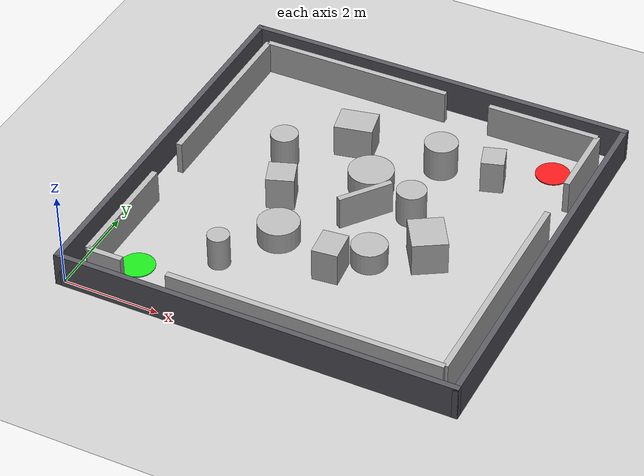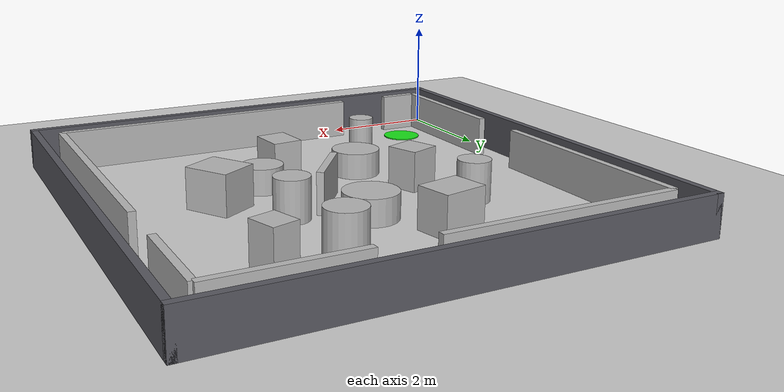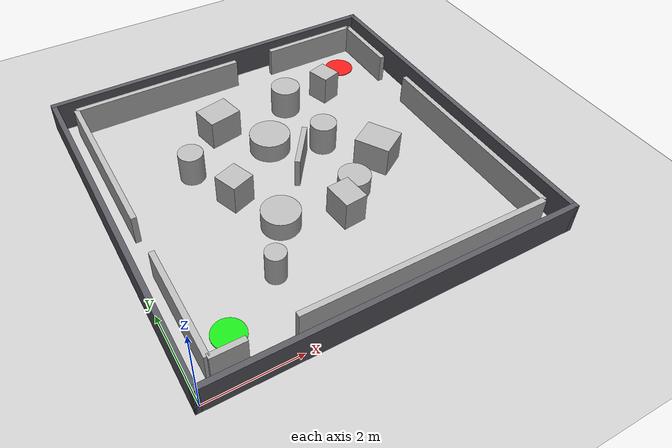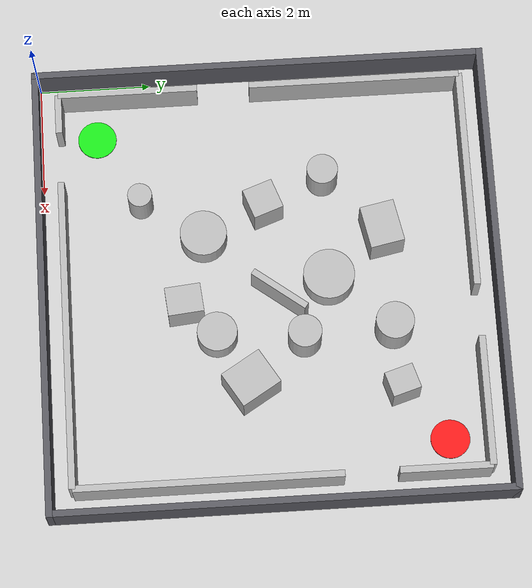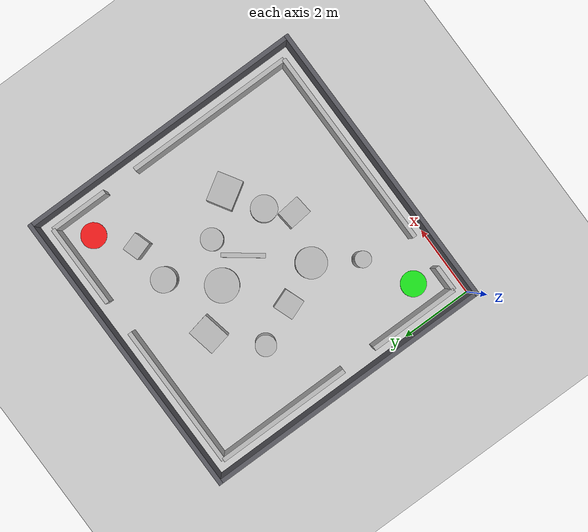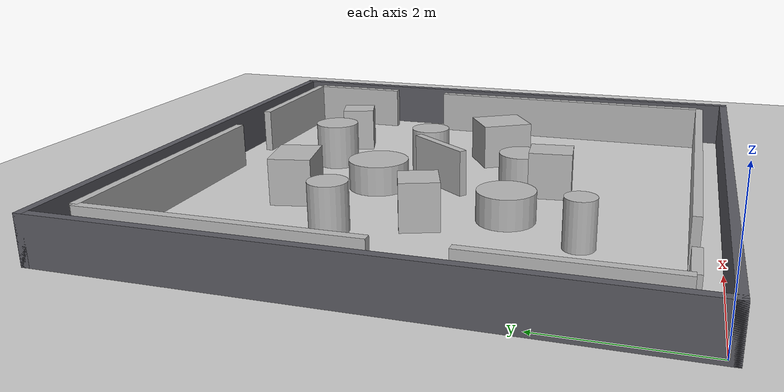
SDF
<?xml version="1.0" ?>
<sdf version="1.6">
  <world name="level1_arena_8x8_irregular_tight">
    <gravity>0 0 -9.8</gravity>
    <physics type="ode">
      <max_step_size>0.001</max_step_size>
      <real_time_factor>1.0</real_time_factor>
      <real_time_update_rate>1000</real_time_update_rate>
    </physics>

    <plugin name="gazebo_ros_state" filename="libgazebo_ros_state.so">
      <update_rate>50.0</update_rate>
    </plugin>

    <include><uri>model://sun</uri></include>
    <include><uri>model://ground_plane</uri></include>

    <!-- ===== Outer walls (inner boundary roughly [0,8]×[0,8]) ===== -->
    <model name="a8_wall_south"><static>true</static><pose>4.0 -0.06 0.35 0 0 0</pose>
      <link name="link">
        <collision name="c"><geometry><box><size>8.24 0.12 0.7</size></box></geometry></collision>
        <visual name="v"><geometry><box><size>8.24 0.12 0.7</size></box></geometry>
          <material><ambient>0.22 0.22 0.24 1</ambient><diffuse>0.35 0.35 0.38 1</diffuse></material>
        </visual>
      </link>
    </model>
    <model name="a8_wall_north"><static>true</static><pose>4.0 8.06 0.35 0 0 0</pose>
      <link name="link">
        <collision name="c"><geometry><box><size>8.24 0.12 0.7</size></box></geometry></collision>
        <visual name="v"><geometry><box><size>8.24 0.12 0.7</size></box></geometry>
          <material><ambient>0.22 0.22 0.24 1</ambient><diffuse>0.35 0.35 0.38 1</diffuse></material>
        </visual>
      </link>
    </model>
    <model name="a8_wall_west"><static>true</static><pose>-0.06 4.0 0.35 0 0 0</pose>
      <link name="link">
        <collision name="c"><geometry><box><size>0.12 8.24 0.7</size></box></geometry></collision>
        <visual name="v"><geometry><box><size>0.12 8.24 0.7</size></box></geometry>
          <material><ambient>0.22 0.22 0.24 1</ambient><diffuse>0.35 0.35 0.38 1</diffuse></material>
        </visual>
      </link>
    </model>
    <model name="a8_wall_east"><static>true</static><pose>8.06 4.0 0.35 0 0 0</pose>
      <link name="link">
        <collision name="c"><geometry><box><size>0.12 8.24 0.7</size></box></geometry></collision>
        <visual name="v"><geometry><box><size>0.12 8.24 0.7</size></box></geometry>
          <material><ambient>0.22 0.22 0.24 1</ambient><diffuse>0.35 0.35 0.38 1</diffuse></material>
        </visual>
      </link>
    </model>

    <!-- Start/goal markers -->
    <model name="a8_start_marker"><static>true</static><pose>1.0 1.0 0.01 0 0 0</pose>
      <link name="link"><visual name="visual"><geometry><cylinder><radius>0.35</radius><length>0.02</length></cylinder></geometry>
        <material><ambient>0.1 0.8 0.1 1</ambient><diffuse>0.1 0.9 0.1 1</diffuse></material></visual></link></model>
    <model name="a8_goal_marker"><static>true</static><pose>7.0 7.0 0.01 0 0 0</pose>
      <link name="link"><visual name="visual"><geometry><cylinder><radius>0.35</radius><length>0.02</length></cylinder></geometry>
        <material><ambient>0.85 0.1 0.1 1</ambient><diffuse>0.95 0.1 0.1 1</diffuse></material></visual></link></model>

    <!-- ===== Inner ring walls (moved outward): keep start/goal markers clear ===== -->
    <!-- Wall thickness=0.12, height=0.7 -->

    <!-- South inner wall (y=0.35) with gate centered at x=1.55, gate width=0.95 -->
    <model name="ir_wall_south_left"><static>true</static><pose>0.7125 0.35 0.35 0 0 0</pose>
      <link name="link"><collision name="c"><geometry><box><size>0.725 0.12 0.7</size></box></geometry></collision>
        <visual name="v"><geometry><box><size>0.725 0.12 0.7</size></box></geometry></visual></link></model>
    <model name="ir_wall_south_right"><static>true</static><pose>4.8375 0.35 0.35 0 0 0</pose>
      <link name="link"><collision name="c"><geometry><box><size>5.625 0.12 0.7</size></box></geometry></collision>
        <visual name="v"><geometry><box><size>5.625 0.12 0.7</size></box></geometry></visual></link></model>

    <!-- West inner wall (x=0.35) with gate centered at y=3.35, gate width=0.95 -->
    <model name="ir_wall_west_bottom"><static>true</static><pose>0.35 1.6125 0.35 0 0 0</pose>
      <link name="link"><collision name="c"><geometry><box><size>0.12 2.525 0.7</size></box></geometry></collision>
        <visual name="v"><geometry><box><size>0.12 2.525 0.7</size></box></geometry></visual></link></model>
    <model name="ir_wall_west_top"><static>true</static><pose>0.35 5.7375 0.35 0 0 0</pose>
      <link name="link"><collision name="c"><geometry><box><size>0.12 3.825 0.7</size></box></geometry></collision>
        <visual name="v"><geometry><box><size>0.12 3.825 0.7</size></box></geometry></visual></link></model>

    <!-- North inner wall (y=7.65) with gate centered at x=4.85, gate width=0.95 -->
    <model name="ir_wall_north_left"><static>true</static><pose>2.3625 7.65 0.35 0 0 0</pose>
      <link name="link"><collision name="c"><geometry><box><size>4.025 0.12 0.7</size></box></geometry></collision>
        <visual name="v"><geometry><box><size>4.025 0.12 0.7</size></box></geometry></visual></link></model>
    <model name="ir_wall_north_right"><static>true</static><pose>6.4875 7.65 0.35 0 0 0</pose>
      <link name="link"><collision name="c"><geometry><box><size>2.325 0.12 0.7</size></box></geometry></collision>
        <visual name="v"><geometry><box><size>2.325 0.12 0.7</size></box></geometry></visual></link></model>

    <!-- East inner wall (x=7.65) with gate centered at y=5.55, gate width=0.95 -->
    <model name="ir_wall_east_bottom"><static>true</static><pose>7.65 2.7125 0.35 0 0 0</pose>
      <link name="link"><collision name="c"><geometry><box><size>0.12 4.725 0.7</size></box></geometry></collision>
        <visual name="v"><geometry><box><size>0.12 4.725 0.7</size></box></geometry></visual></link></model>
    <model name="ir_wall_east_top"><static>true</static><pose>7.65 6.8375 0.35 0 0 0</pose>
      <link name="link"><collision name="c"><geometry><box><size>0.12 1.625 0.7</size></box></geometry></collision>
        <visual name="v"><geometry><box><size>0.12 1.625 0.7</size></box></geometry></visual></link></model>

    <!-- ===== Irregular fixed obstacles inside the inner ring ===== -->
    <!-- Large cubes -->
    <model name="fix_cube_big_0"><static>true</static><pose>3.15 6.05 0.35 0 0 0.20</pose>
      <link name="link">
        <collision name="c"><geometry><box><size>0.78 0.62 0.70</size></box></geometry></collision>
        <visual name="v"><geometry><box><size>0.78 0.62 0.70</size></box></geometry></visual>
      </link>
    </model>
    <model name="fix_cube_big_1"><static>true</static><pose>5.85 3.55 0.35 0 0 0.55</pose>
      <link name="link">
        <collision name="c"><geometry><box><size>0.70 0.80 0.70</size></box></geometry></collision>
        <visual name="v"><geometry><box><size>0.70 0.80 0.70</size></box></geometry></visual>
      </link>
    </model>

    <!-- Mid cubes -->
    <model name="fix_cube_mid_0"><static>true</static><pose>2.55 3.95 0.35 0 0 0.35</pose>
      <link name="link">
        <collision name="c"><geometry><box><size>0.56 0.56 0.70</size></box></geometry></collision>
        <visual name="v"><geometry><box><size>0.56 0.56 0.70</size></box></geometry></visual>
      </link>
    </model>
    <model name="fix_cube_mid_1"><static>true</static><pose>4.35 2.45 0.35 0 0 0.10</pose>
      <link name="link">
        <collision name="c"><geometry><box><size>0.52 0.64 0.70</size></box></geometry></collision>
        <visual name="v"><geometry><box><size>0.52 0.64 0.70</size></box></geometry></visual>
      </link>
    </model>

    <!-- Cylinders -->
    <model name="fix_cyl_0"><static>true</static><pose>4.95 6.15 0.35 0 0 0</pose>
      <link name="link">
        <collision name="c"><geometry><cylinder><radius>0.34</radius><length>0.70</length></cylinder></geometry></collision>
        <visual name="v"><geometry><cylinder><radius>0.34</radius><length>0.70</length></cylinder></geometry></visual>
      </link>
    </model>
    <model name="fix_cyl_1"><static>true</static><pose>2.05 5.05 0.35 0 0 0</pose>
      <link name="link">
        <collision name="c"><geometry><cylinder><radius>0.28</radius><length>0.70</length></cylinder></geometry></collision>
        <visual name="v"><geometry><cylinder><radius>0.28</radius><length>0.70</length></cylinder></geometry></visual>
      </link>
    </model>
    <model name="fix_cyl_2"><static>true</static><pose>5.05 4.55 0.35 0 0 0</pose>
      <link name="link">
        <collision name="c"><geometry><cylinder><radius>0.30</radius><length>0.70</length></cylinder></geometry></collision>
        <visual name="v"><geometry><cylinder><radius>0.30</radius><length>0.70</length></cylinder></geometry></visual>
      </link>
    </model>

    <!-- Flat cylinders (wider, shorter) -->
    <model name="fix_flat_0"><static>true</static><pose>3.95 5.05 0.225 0 0 0</pose>
      <link name="link">
        <collision name="c"><geometry><cylinder><radius>0.46</radius><length>0.45</length></cylinder></geometry></collision>
        <visual name="v"><geometry><cylinder><radius>0.46</radius><length>0.45</length></cylinder></geometry></visual>
      </link>
    </model>
    <model name="fix_flat_1"><static>true</static><pose>3.05 2.85 0.225 0 0 0</pose>
      <link name="link">
        <collision name="c"><geometry><cylinder><radius>0.42</radius><length>0.45</length></cylinder></geometry></collision>
        <visual name="v"><geometry><cylinder><radius>0.42</radius><length>0.45</length></cylinder></geometry></visual>
      </link>
    </model>

    <!-- Extra scattered obstacles (slightly increase density; break accidental straight corridors) -->
    <model name="fix_cyl_extra_0"><static>true</static><pose>2.35 1.75 0.35 0 0 0</pose>
      <link name="link">
        <collision name="c"><geometry><cylinder><radius>0.22</radius><length>0.70</length></cylinder></geometry></collision>
        <visual name="v"><geometry><cylinder><radius>0.22</radius><length>0.70</length></cylinder></geometry></visual>
      </link>
    </model>
    <model name="fix_cube_extra_0"><static>true</static><pose>6.05 6.20 0.35 0 0 0.30</pose>
      <link name="link">
        <collision name="c"><geometry><box><size>0.46 0.52 0.70</size></box></geometry></collision>
        <visual name="v"><geometry><box><size>0.46 0.52 0.70</size></box></geometry></visual>
      </link>
    </model>
    <model name="fix_flat_extra_0"><static>true</static><pose>4.90 3.00 0.225 0 0 0</pose>
      <link name="link">
        <collision name="c"><geometry><cylinder><radius>0.36</radius><length>0.45</length></cylinder></geometry></collision>
        <visual name="v"><geometry><cylinder><radius>0.36</radius><length>0.45</length></cylinder></geometry></visual>
      </link>
    </model>
    <!-- Thin deflector wall (still a fixed static obstacle): forces an S-bend without fully blocking) -->
    <model name="fix_wall_deflector_0"><static>true</static><pose>4.25 4.15 0.35 0 0 0.92</pose>
      <link name="link">
        <collision name="c"><geometry><box><size>1.15 0.12 0.70</size></box></geometry></collision>
        <visual name="v"><geometry><box><size>1.15 0.12 0.70</size></box></geometry></visual>
      </link>
    </model>

    <gui fullscreen="0"><camera name="user_camera"><pose>4 -9 12 0 0.52 1.57</pose></camera></gui>
  </world>
</sdf>
